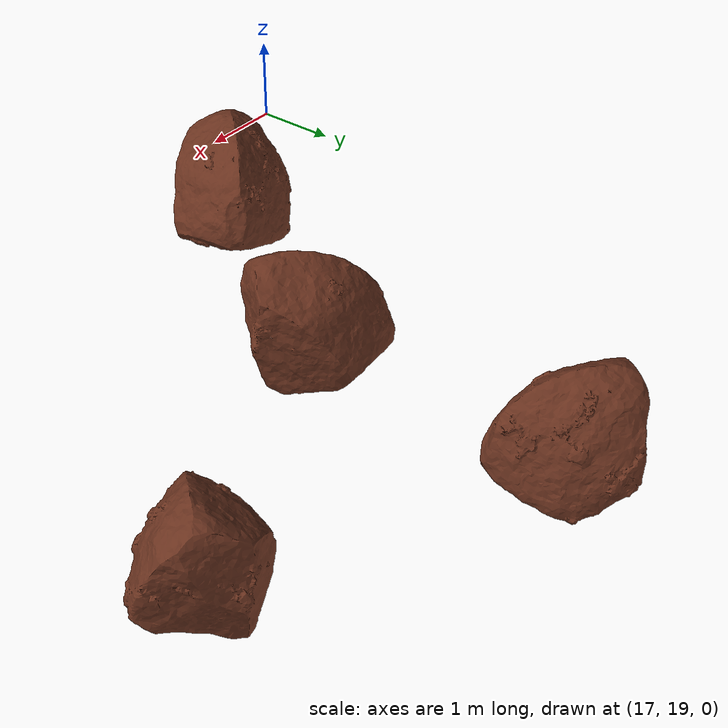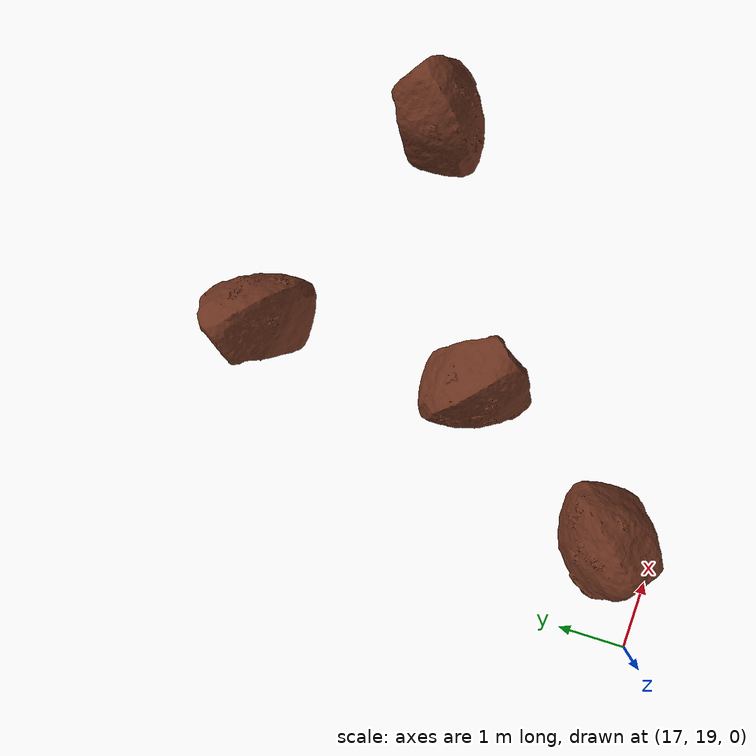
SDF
<sdf version="1.6">
 <world name="mars">
  <plugin name="gazebo_ros_state" filename="libgazebo_ros_state.so">
   <ros><namespace>/gazebo</namespace><argument>model_states:=model_states_demo</argument></ros>
   <update_rate>1000.0</update_rate>
  </plugin>
  <light name="sun" type="directional">
   <pose>0 0 10 0 -0 0</pose>
   <diffuse>0.8 0.8 0.8 1</diffuse>
   <specular>0.1 0.1 0.1 1</specular>
   <attenuation>
    <range>1000</range>
    <constant>0.9</constant>
    <linear>0.01</linear>
    <quadratic>0.001</quadratic>
   </attenuation>
   <direction>-0.5 0.5 -1</direction>
  </light>
  <scene>
   <ambient>201 137 50 1</ambient>
   <background>201 137 50 1</background>
   <shadows>1</shadows>
   <grid>0</grid>
   <origin_visual>0</origin_visual>
   <sky>
    <time>7</time>
    <clouds><humidity>0.0001</humidity><mean_size>0.0001</mean_size><ambient>0 0 0 1</ambient></clouds>
   </sky>
  </scene>
  <include>
   <name>rock_1</name>
   <uri>model://mars_rock</uri>
   <pose>18.126667 19.651024 -2.163455 0.029706 0.143569 -0.012499</pose>
  </include>
  <include>
   <name>rock_2</name>
   <uri>model://mars_rock</uri>
   <pose>20 22 -2.163455 0.029706 0.143569 1.57</pose>
  </include>
  <include>
   <name>rock_3</name>
   <uri>model://mars_rock</uri>
   <pose>20 26 -2.163455 0.029706 0.143569 -1.57</pose>
  </include>
  <include>
   <name>rock_4</name>
   <uri>model://mars_rock</uri>
   <pose>24 24 -2.163455 0.029706 0.143569 -3.14</pose>
  </include>
  <physics name="default_physics" default="0" type="ode">
   <max_step_size>0.01</max_step_size>
   <real_time_factor>1</real_time_factor>
   <real_time_update_rate>100</real_time_update_rate>
  </physics>
  <gravity>0 0 -3.711</gravity>
  <magnetic_field>6e-06 2.3e-05 -4.2e-05</magnetic_field>
  <atmosphere type="adiabatic"/>
  <spherical_coordinates>
   <surface_model>EARTH_WGS84</surface_model>
   <latitude_deg>0</latitude_deg>
   <longitude_deg>0</longitude_deg>
   <elevation>0</elevation>
   <heading_deg>0</heading_deg>
  </spherical_coordinates>
 </world>
</sdf>

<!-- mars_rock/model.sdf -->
<sdf version="1.6">
  <model name="mars_rock">
    <pose>0 0 0 0 0 0</pose>
    <link name="link">
      <collision name='collision'>
        <laser_retro>0</laser_retro>
        <max_contacts>10</max_contacts>
        <pose>0 0 0 0 0 0</pose>
        <geometry>
          <mesh>
            <uri>model://mars_rock/meshes/model.dae</uri>
          </mesh>
        </geometry>
        <surface>
          <friction>
            <ode>
              <mu>1</mu>
              <mu2>1</mu2>
              <fdir1>0 0 0</fdir1>
              <slip1>0</slip1>
              <slip2>0</slip2>
            </ode>
            <torsional>
              <coefficient>1</coefficient>
              <patch_radius>0</patch_radius>
              <surface_radius>0</surface_radius>
              <use_patch_radius>1</use_patch_radius>
              <ode>
                <slip>0</slip>
              </ode>
            </torsional>
          </friction>
          <bounce>
            <restitution_coefficient>0</restitution_coefficient>
            <threshold>1e+06</threshold>
          </bounce>
          <contact>
            <collide_without_contact>0</collide_without_contact>
            <collide_without_contact_bitmask>1</collide_without_contact_bitmask>
            <collide_bitmask>1</collide_bitmask>
            <ode>
              <soft_cfm>0</soft_cfm>
              <soft_erp>0.2</soft_erp>
              <kp>1e+13</kp>
              <kd>1</kd>
              <max_vel>0.01</max_vel>
              <min_depth>0</min_depth>
            </ode>
            <bullet>
              <split_impulse>1</split_impulse>
              <split_impulse_penetration_threshold>-0.01</split_impulse_penetration_threshold>
              <soft_cfm>0</soft_cfm>
              <soft_erp>0.2</soft_erp>
              <kp>1e+13</kp>
              <kd>1</kd>
            </bullet>
          </contact>
        </surface>
      </collision>
      <visual name="visual">
        <geometry>
          <mesh>
            <uri>model://mars_rock/meshes/model.dae</uri>
          </mesh>
        </geometry>
        <material>
          <script>
            <uri>model://mars_rock/materials/scripts</uri>
            <uri>model://mars_rock/materials/textures</uri>
            <name>mars/rock</name>
          </script>
        </material>
      </visual>
    </link>
  </model>
</sdf>
